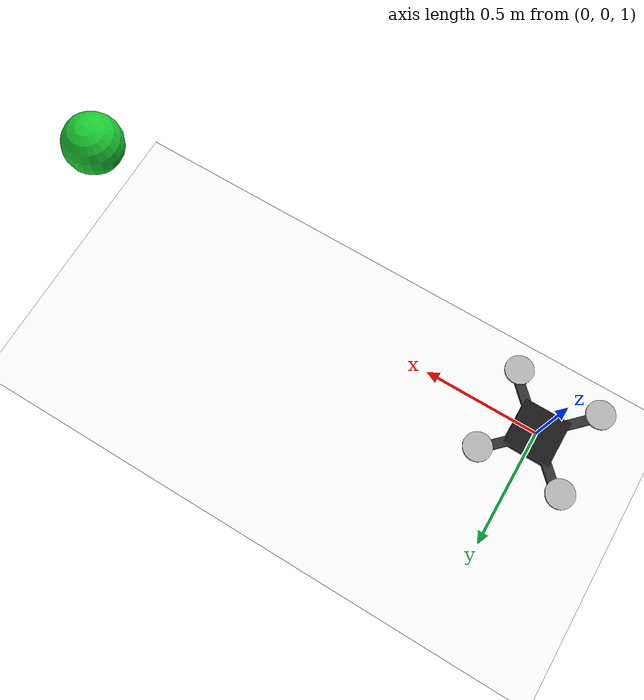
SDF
<?xml version="1.0" ?>
<sdf version="1.9">
  <world name="quad_world">
    <gravity>0 0 -9.81</gravity>

    <physics name="4ms" type="ignored">
      <max_step_size>0.004</max_step_size>
      <real_time_factor>1.0</real_time_factor>
    </physics>

    <plugin filename="gz-sim-physics-system"
            name="gz::sim::systems::Physics">
    </plugin>
    <plugin filename="gz-sim-scene-broadcaster-system"
            name="gz::sim::systems::SceneBroadcaster">
    </plugin>
    <plugin filename="gz-sim-user-commands-system"
            name="gz::sim::systems::UserCommands">
    </plugin>

    <model name="ground_plane">
      <static>true</static>
      <link name="link">
        <collision name="collision">
          <geometry>
            <plane><normal>0 0 1</normal><size>200 200</size></plane>
          </geometry>
        </collision>
        <visual name="visual">
          <geometry>
            <plane><normal>0 0 1</normal><size>200 200</size></plane>
          </geometry>
          <material>
            <ambient>1 1 1 1</ambient>
            <diffuse>1 1 1 1</diffuse>
            <specular>0.2 0.2 0.2 1</specular>
          </material>
        </visual>
      </link>
    </model>

    <model name="goal">
      <static>true</static>
      <pose>2 0 1.5 0 0 0</pose>
      <link name="goal_link">
        <visual name="goal_visual">
          <geometry>
            <sphere><radius>0.12</radius></sphere>
          </geometry>
          <material>
            <ambient>0.1 0.8 0.2 1</ambient>
            <diffuse>0.1 0.8 0.2 1</diffuse>
            <specular>0.2 0.2 0.2 1</specular>
          </material>
        </visual>
      </link>
    </model>

    <include>
      <uri>file://quad_model.sdf</uri>
    </include>
  </world>
</sdf>

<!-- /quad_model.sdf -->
<sdf version="1.9">
  <model name="quad">
    <pose>0 0 1 0 0 0</pose>

    <!-- Main body -->
    <link name="base_link">
      <inertial>
        <mass>1.2</mass>
        <inertia>
          <ixx>0.02</ixx><iyy>0.02</iyy><izz>0.04</izz>
          <ixy>0</ixy><ixz>0</ixz><iyz>0</iyz>
        </inertia>
      </inertial>

      <collision name="body_collision">
        <geometry><box><size>0.30 0.30 0.10</size></box></geometry>
      </collision>
      <visual name="body_visual">
        <geometry><box><size>0.20 0.20 0.05</size></box></geometry>
        <material>
          <ambient>0.05 0.01 0.01 0.08</ambient>
          <diffuse>0.1 0.1 0.1 1</diffuse>
          <specular>0.2 0.2 0.2 1</specular>
        </material>
      </visual>

      <!-- X-frame arms -->
      <visual name="arm_1">
        <pose>0 0 0 0 0 0.785398</pose>
        <geometry><box><size>0.55 0.04 0.02</size></box></geometry>
        <material>
          <ambient>0.2 0.2 0.2 1</ambient>
          <diffuse>0.2 0.2 0.2 1</diffuse>
          <specular>0.2 0.2 0.2 1</specular>
        </material>
      </visual>
      <visual name="arm_2">
        <pose>0 0 0 0 0 -0.785398</pose>
        <geometry><box><size>0.55 0.04 0.02</size></box></geometry>
        <material>
          <ambient>0.2 0.2 0.2 1</ambient>
          <diffuse>0.2 0.2 0.2 1</diffuse>
          <specular>0.2 0.2 0.2 1</specular>
        </material>
      </visual>
    </link>

    <!-- Rotor links (very simple visuals) -->
    <link name="rotor_0">
      <pose> 0.18  0.18 0.06 0 0 0</pose>
      <inertial>
        <mass>0.01</mass>
        <inertia>
          <ixx>1e-5</ixx><iyy>1e-5</iyy><izz>2e-5</izz>
          <ixy>0</ixy><ixz>0</ixz><iyz>0</iyz>
        </inertia>
      </inertial>
      <visual name="v">
        <geometry><cylinder><radius>0.06</radius><length>0.01</length></cylinder></geometry>
      </visual>
    </link>
    <link name="rotor_1">
      <pose>-0.18  0.18 0.06 0 0 0</pose>
      <inertial>
        <mass>0.01</mass>
        <inertia>
          <ixx>1e-5</ixx><iyy>1e-5</iyy><izz>2e-5</izz>
          <ixy>0</ixy><ixz>0</ixz><iyz>0</iyz>
        </inertia>
      </inertial>
      <visual name="v">
        <geometry><cylinder><radius>0.06</radius><length>0.01</length></cylinder></geometry>
      </visual>
    </link>
    <link name="rotor_2">
      <pose>-0.18 -0.18 0.06 0 0 0</pose>
      <inertial>
        <mass>0.01</mass>
        <inertia>
          <ixx>1e-5</ixx><iyy>1e-5</iyy><izz>2e-5</izz>
          <ixy>0</ixy><ixz>0</ixz><iyz>0</iyz>
        </inertia>
      </inertial>
      <visual name="v">
        <geometry><cylinder><radius>0.06</radius><length>0.01</length></cylinder></geometry>
      </visual>
    </link>
    <link name="rotor_3">
      <pose> 0.18 -0.18 0.06 0 0 0</pose>
      <inertial>
        <mass>0.01</mass>
        <inertia>
          <ixx>1e-5</ixx><iyy>1e-5</iyy><izz>2e-5</izz>
          <ixy>0</ixy><ixz>0</ixz><iyz>0</iyz>
        </inertia>
      </inertial>
      <visual name="v">
        <geometry><cylinder><radius>0.06</radius><length>0.01</length></cylinder></geometry>
      </visual>
    </link>

    <!-- Rotor spin joints -->
    <joint name="rotor_0_joint" type="revolute">
      <parent>base_link</parent><child>rotor_0</child>
      <axis><xyz>0 0 1</xyz></axis>
    </joint>
    <joint name="rotor_1_joint" type="revolute">
      <parent>base_link</parent><child>rotor_1</child>
      <axis><xyz>0 0 1</xyz></axis>
    </joint>
    <joint name="rotor_2_joint" type="revolute">
      <parent>base_link</parent><child>rotor_2</child>
      <axis><xyz>0 0 1</xyz></axis>
    </joint>
    <joint name="rotor_3_joint" type="revolute">
      <parent>base_link</parent><child>rotor_3</child>
      <axis><xyz>0 0 1</xyz></axis>
    </joint>

    <!-- Motor model on EACH rotor -->
    <plugin filename="gz-sim-multicopter-motor-model-system"
            name="gz::sim::systems::MulticopterMotorModel">
      <jointName>rotor_0_joint</jointName>
      <linkName>rotor_0</linkName>
      <commandSubTopic>/quad/gazebo/command/motor_speed</commandSubTopic>
      <turningDirection>ccw</turningDirection>
      <motorConstant>8.54858e-06</motorConstant>
      <momentConstant>1.6e-02</momentConstant>
      <actuator_number>0</actuator_number>
    </plugin>

    <plugin filename="gz-sim-multicopter-motor-model-system"
            name="gz::sim::systems::MulticopterMotorModel">
      <jointName>rotor_1_joint</jointName>
      <linkName>rotor_1</linkName>
      <commandSubTopic>/quad/gazebo/command/motor_speed</commandSubTopic>
      <turningDirection>cw</turningDirection>
      <motorConstant>8.54858e-06</motorConstant>
      <momentConstant>1.6e-02</momentConstant>
      <actuator_number>1</actuator_number>
    </plugin>

    <plugin filename="gz-sim-multicopter-motor-model-system"
            name="gz::sim::systems::MulticopterMotorModel">
      <jointName>rotor_2_joint</jointName>
      <linkName>rotor_2</linkName>
      <commandSubTopic>/quad/gazebo/command/motor_speed</commandSubTopic>
      <turningDirection>ccw</turningDirection>
      <motorConstant>8.54858e-06</motorConstant>
      <momentConstant>1.6e-02</momentConstant>
      <actuator_number>2</actuator_number>
    </plugin>

    <plugin filename="gz-sim-multicopter-motor-model-system"
            name="gz::sim::systems::MulticopterMotorModel">
      <jointName>rotor_3_joint</jointName>
      <linkName>rotor_3</linkName>
      <commandSubTopic>/quad/gazebo/command/motor_speed</commandSubTopic>
      <turningDirection>cw</turningDirection>
      <motorConstant>8.54858e-06</motorConstant>
      <momentConstant>1.6e-02</momentConstant>
      <actuator_number>3</actuator_number>
    </plugin>

    <!-- Velocity controller: explicit topics to match random_policy.py -->
    <plugin filename="gz-sim-multicopter-control-system"
            name="gz::sim::systems::MulticopterVelocityControl">
      <robotNamespace>quad</robotNamespace>
      <commandSubTopic>gazebo/command/twist</commandSubTopic>
      <enableSubTopic>enable</enableSubTopic>
      <comLinkName>base_link</comLinkName>

      <!-- Gains: conservative starter values -->
      <velocityGain>4 4 6</velocityGain>
      <attitudeGain>4 4 1</attitudeGain>
      <angularRateGain>0.3 0.3 0.2</angularRateGain>

      <!-- Optional safety caps -->
      <maxLinearAcceleration>6 6 8</maxLinearAcceleration>

      <rotorConfiguration>
        <rotor><jointName>rotor_0_joint</jointName><forceConstant>8.54858e-06</forceConstant><momentConstant>1.6e-02</momentConstant><direction> 1</direction></rotor>
        <rotor><jointName>rotor_1_joint</jointName><forceConstant>8.54858e-06</forceConstant><momentConstant>1.6e-02</momentConstant><direction>-1</direction></rotor>
        <rotor><jointName>rotor_2_joint</jointName><forceConstant>8.54858e-06</forceConstant><momentConstant>1.6e-02</momentConstant><direction> 1</direction></rotor>
        <rotor><jointName>rotor_3_joint</jointName><forceConstant>8.54858e-06</forceConstant><momentConstant>1.6e-02</momentConstant><direction>-1</direction></rotor>
      </rotorConfiguration>
    </plugin>
  </model>
</sdf>
